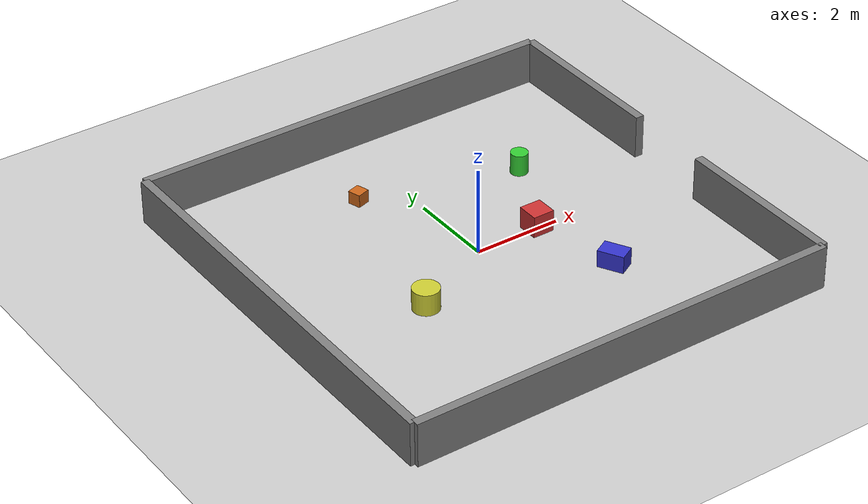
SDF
<?xml version="1.0" ?>
<!-- Gazebo 世界文件 — 带障碍物的测试场景
     包含: 地面平面、墙壁、随机障碍物（盒子/圆柱体）
-->
<sdf version="1.6">
  <world name="obstacle_world">

    <!-- 物理引擎 -->
    <physics name="default_physics" default="true" type="ode">
      <max_step_size>0.001</max_step_size>
      <real_time_factor>1</real_time_factor>
      <real_time_update_rate>1000</real_time_update_rate>
    </physics>

    <!-- 场景 -->
    <scene>
      <ambient>0.4 0.4 0.4 1</ambient>
      <background>0.7 0.7 0.7 1</background>
      <shadows>true</shadows>
    </scene>

    <!-- 地面 -->
    <include>
      <uri>model://ground_plane</uri>
    </include>

    <!-- 太阳 -->
    <include>
      <uri>model://sun</uri>
    </include>

    <!-- ════════════════════════════════════════════════════════
         障碍物：墙壁（围成一个走廊/房间）
         ════════════════════════════════════════════════════════ -->

    <!-- 北墙 -->
    <model name="wall_north">
      <pose>0 5 0.5 0 0 0</pose>
      <static>true</static>
      <link name="link">
        <collision name="collision">
          <geometry>
            <box><size>10 0.2 1</size></box>
          </geometry>
        </collision>
        <visual name="visual">
          <geometry>
            <box><size>10 0.2 1</size></box>
          </geometry>
          <material>
            <ambient>0.5 0.5 0.5 1</ambient>
            <diffuse>0.5 0.5 0.5 1</diffuse>
          </material>
        </visual>
      </link>
    </model>

    <!-- 南墙 -->
    <model name="wall_south">
      <pose>0 -5 0.5 0 0 0</pose>
      <static>true</static>
      <link name="link">
        <collision name="collision">
          <geometry>
            <box><size>10 0.2 1</size></box>
          </geometry>
        </collision>
        <visual name="visual">
          <geometry>
            <box><size>10 0.2 1</size></box>
          </geometry>
          <material>
            <ambient>0.5 0.5 0.5 1</ambient>
            <diffuse>0.5 0.5 0.5 1</diffuse>
          </material>
        </visual>
      </link>
    </model>

    <!-- 西墙 -->
    <model name="wall_west">
      <pose>-5 0 0.5 0 0 0</pose>
      <static>true</static>
      <link name="link">
        <collision name="collision">
          <geometry>
            <box><size>0.2 10 1</size></box>
          </geometry>
        </collision>
        <visual name="visual">
          <geometry>
            <box><size>0.2 10 1</size></box>
          </geometry>
          <material>
            <ambient>0.5 0.5 0.5 1</ambient>
            <diffuse>0.5 0.5 0.5 1</diffuse>
          </material>
        </visual>
      </link>
    </model>

    <!-- 东墙（留一个门/缺口） -->
    <model name="wall_east_left">
      <pose>5 -3 0.5 0 0 0</pose>
      <static>true</static>
      <link name="link">
        <collision name="collision">
          <geometry>
            <box><size>0.2 4 1</size></box>
          </geometry>
        </collision>
        <visual name="visual">
          <geometry>
            <box><size>0.2 4 1</size></box>
          </geometry>
          <material>
            <ambient>0.5 0.5 0.5 1</ambient>
            <diffuse>0.5 0.5 0.5 1</diffuse>
          </material>
        </visual>
      </link>
    </model>

    <model name="wall_east_right">
      <pose>5 3 0.5 0 0 0</pose>
      <static>true</static>
      <link name="link">
        <collision name="collision">
          <geometry>
            <box><size>0.2 4 1</size></box>
          </geometry>
        </collision>
        <visual name="visual">
          <geometry>
            <box><size>0.2 4 1</size></box>
          </geometry>
          <material>
            <ambient>0.5 0.5 0.5 1</ambient>
            <diffuse>0.5 0.5 0.5 1</diffuse>
          </material>
        </visual>
      </link>
    </model>

    <!-- ════════════════════════════════════════════════════════
         障碍物：随机放置的盒子/圆柱体
         ════════════════════════════════════════════════════════ -->

    <!-- 障碍物1: 中间大盒子 -->
    <model name="obstacle_box_1">
      <pose>1.5 0 0.25 0 0 0</pose>
      <static>true</static>
      <link name="link">
        <collision name="collision">
          <geometry>
            <box><size>0.5 0.5 0.5</size></box>
          </geometry>
        </collision>
        <visual name="visual">
          <geometry>
            <box><size>0.5 0.5 0.5</size></box>
          </geometry>
          <material>
            <ambient>0.8 0.2 0.2 1</ambient>
            <diffuse>0.8 0.2 0.2 1</diffuse>
          </material>
        </visual>
      </link>
    </model>

    <!-- 障碍物2: 左前方圆柱 -->
    <model name="obstacle_cylinder_1">
      <pose>2.5 2 0.25 0 0 0</pose>
      <static>true</static>
      <link name="link">
        <collision name="collision">
          <geometry>
            <cylinder><radius>0.2</radius><length>0.5</length></cylinder>
          </geometry>
        </collision>
        <visual name="visual">
          <geometry>
            <cylinder><radius>0.2</radius><length>0.5</length></cylinder>
          </geometry>
          <material>
            <ambient>0.2 0.8 0.2 1</ambient>
            <diffuse>0.2 0.8 0.2 1</diffuse>
          </material>
        </visual>
      </link>
    </model>

    <!-- 障碍物3: 右前方盒子 -->
    <model name="obstacle_box_2">
      <pose>2 -2 0.2 0 0 0.5</pose>
      <static>true</static>
      <link name="link">
        <collision name="collision">
          <geometry>
            <box><size>0.4 0.6 0.4</size></box>
          </geometry>
        </collision>
        <visual name="visual">
          <geometry>
            <box><size>0.4 0.6 0.4</size></box>
          </geometry>
          <material>
            <ambient>0.2 0.2 0.8 1</ambient>
            <diffuse>0.2 0.2 0.8 1</diffuse>
          </material>
        </visual>
      </link>
    </model>

    <!-- 障碍物4: 后方圆柱 -->
    <model name="obstacle_cylinder_2">
      <pose>-2 -1 0.25 0 0 0</pose>
      <static>true</static>
      <link name="link">
        <collision name="collision">
          <geometry>
            <cylinder><radius>0.3</radius><length>0.5</length></cylinder>
          </geometry>
        </collision>
        <visual name="visual">
          <geometry>
            <cylinder><radius>0.3</radius><length>0.5</length></cylinder>
          </geometry>
          <material>
            <ambient>0.8 0.8 0.2 1</ambient>
            <diffuse>0.8 0.8 0.2 1</diffuse>
          </material>
        </visual>
      </link>
    </model>

    <!-- 障碍物5: 窄走廊盒子 -->
    <model name="obstacle_box_3">
      <pose>-1 3 0.15 0 0 0.3</pose>
      <static>true</static>
      <link name="link">
        <collision name="collision">
          <geometry>
            <box><size>0.3 0.3 0.3</size></box>
          </geometry>
        </collision>
        <visual name="visual">
          <geometry>
            <box><size>0.3 0.3 0.3</size></box>
          </geometry>
          <material>
            <ambient>0.8 0.4 0.1 1</ambient>
            <diffuse>0.8 0.4 0.1 1</diffuse>
          </material>
        </visual>
      </link>
    </model>

    <!-- ════════════════════════════════════════════════════════
         GUI 配置
         ════════════════════════════════════════════════════════ -->
    <gui fullscreen="0">
      <camera name="user_camera">
        <pose>0 -10 8 0 0.8 1.57</pose>
        <view_controller>orbit</view_controller>
      </camera>
    </gui>

  </world>
</sdf>
